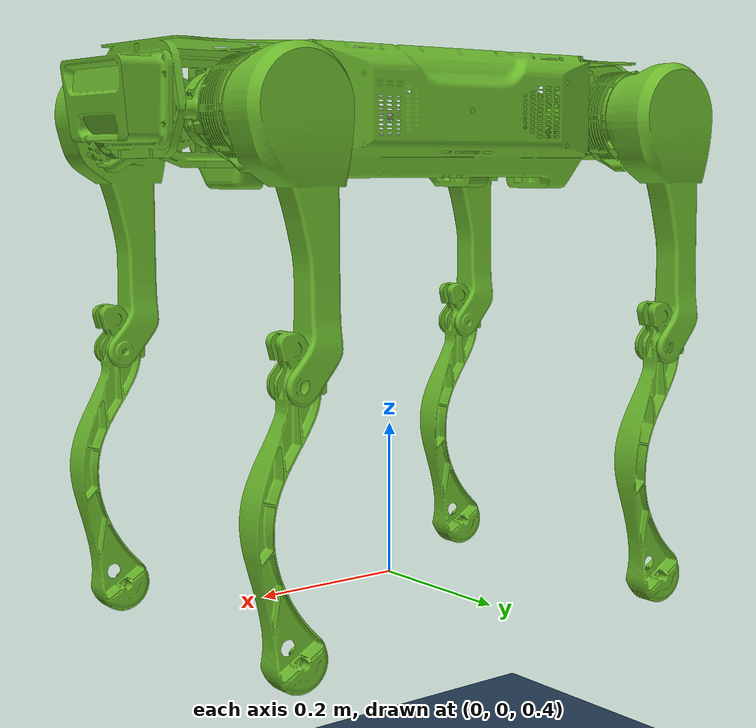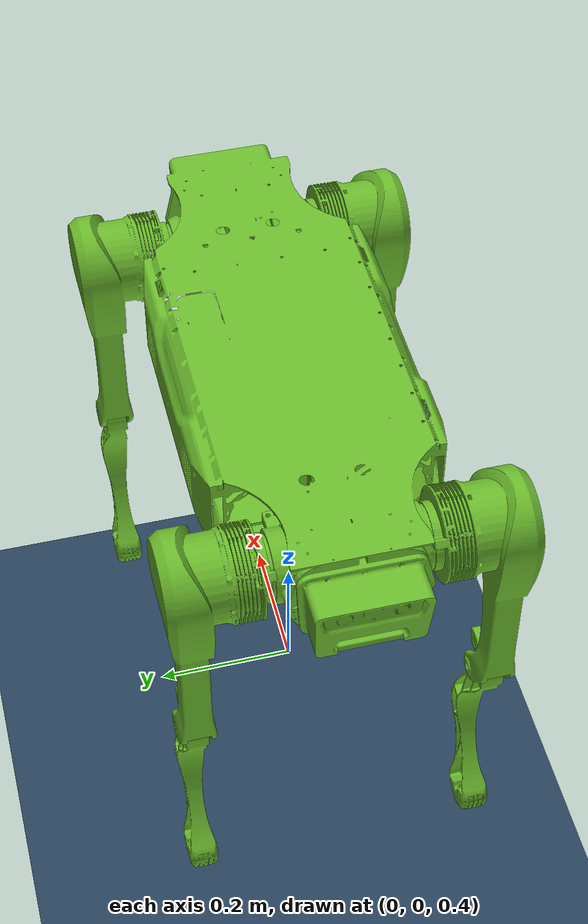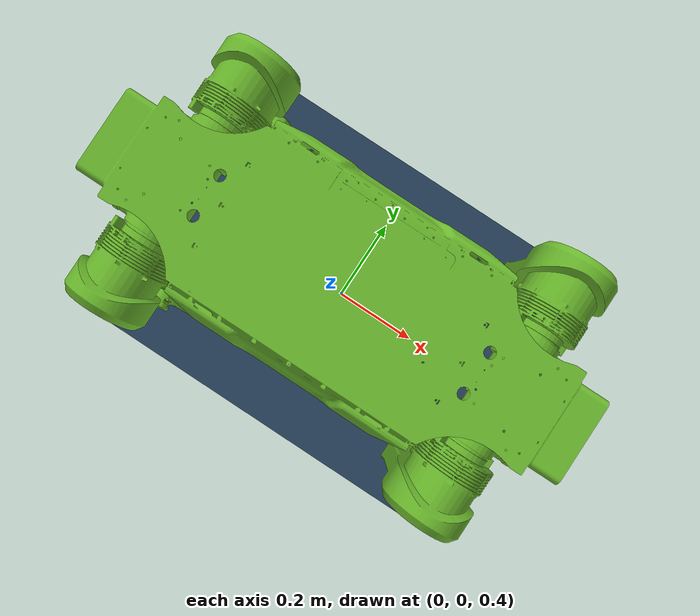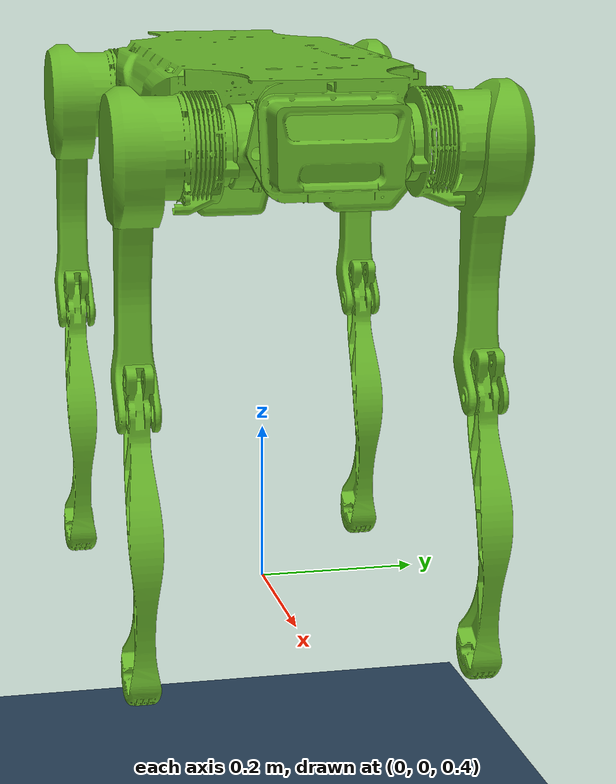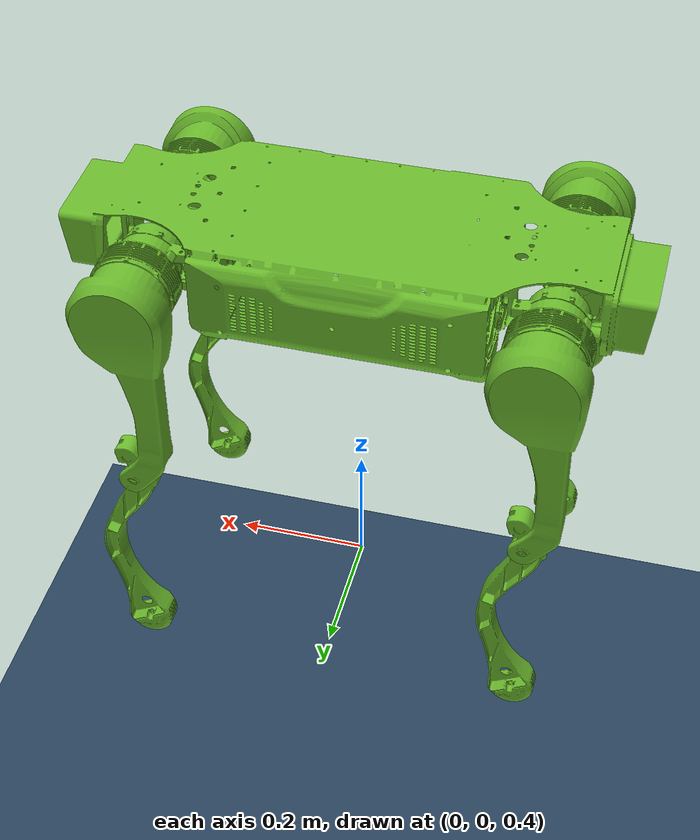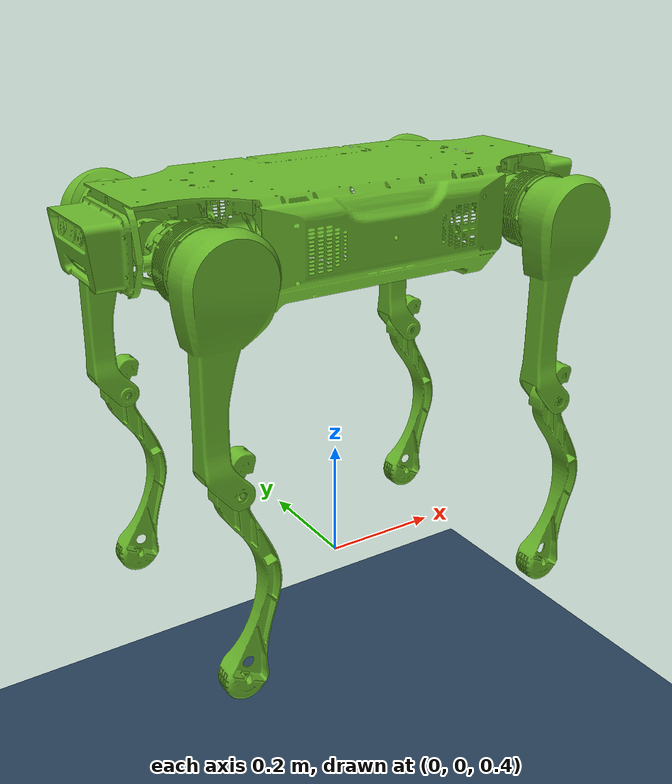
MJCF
<mujoco model="X20V2 scene">
  <include file="X20c.xml"/>

  <statistic center="0 0 0.1" extent="0.8"/>

  <visual>
    <headlight diffuse="0.6 0.6 0.6" ambient="0.3 0.3 0.3" specular="0 0 0"/>
    <rgba haze="0.15 0.25 0.35 1"/>
    <global azimuth="120" elevation="-20"/>
  </visual>

  <asset>
    <texture type="skybox" builtin="gradient" rgb1="0.3 0.5 0.7" rgb2="0 0 0" width="512" height="3072"/>
    <texture type="2d" name="groundplane" builtin="checker" mark="edge" rgb1="0.2 0.3 0.4" rgb2="0.1 0.2 0.3"
      markrgb="0.8 0.8 0.8" width="300" height="300"/>
    <material name="groundplane" texture="groundplane" texuniform="true" texrepeat="5 5" reflectance="0.2"/>
  </asset>

  <worldbody>
    <light pos="0 0 1.5" dir="0 0 -1" directional="true"/>
    <geom name="floor" size="0 0 0.05" type="plane" material="groundplane"/>
  </worldbody>
</mujoco>

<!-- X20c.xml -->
<mujoco model="JueyingX20V2">
  <compiler angle="radian" meshdir="assets" autolimits="true"/>

  <option timestep="0.002" cone="elliptic" impratio="100"/>

  <default>
    <default class="x20">
      <geom friction="0.6" margin="0.001" condim="1"/>
      <joint damping="2" armature="0.01" frictionloss="0.2"/>
      <motor forcerange="-100 100"/>
      <default class="abduction">
        <joint range="-0.496 0.496"/>
      </default>
      <default class="hip">
        <joint range="-2.79 0.257"/>
      </default>
      <default class="knee">
        <joint range="0.35 2.48"/>
        <motor forcerange="-160 160"/>
      </default>
      <default class="visual">
        <geom type="mesh" contype="0" conaffinity="0" group="2" material="dark"/>
      </default>
      <default class="collision">
        <geom contype="1" group="3" type="capsule"/>
        <default class="foot">
          <geom type="sphere" size="0.038" priority="1" solimp="0.015 1 0.031" condim="6"
            friction="0.8 0.02 0.01"/>
        </default>
      </default>
    </default>
  </default>

  <asset>
    <material name="dark" rgba="0.4157 0.7216 0.1725 1.00"/>
    <mesh name= "Torso" file="Torso.stl"/>
    <mesh name= "Shank" file="Shank.stl"/>
    <mesh name= "FL_Hip" file="FL_Hip.stl"/>
    <mesh name= "FR_Hip" file="FR_Hip.stl"/>
    <mesh name= "HL_Hip" file="HL_Hip.stl"/>
    <mesh name= "HR_Hip" file="HR_Hip.stl"/>
    <mesh name= "L_Thigh" file="L_Thigh.stl"/>
    <mesh name= "R_Thigh" file="R_Thigh.stl"/>
  </asset>

  <worldbody>
    <light name="spotlight" mode="targetbodycom" target="trunk" pos="0 -1 2"/>
    <body name="trunk" pos="0 0 1.0" childclass="x20">
      <camera name="tracking" mode="trackcom" pos="0 -1 0.8" xyaxes="1 0 0 0 1 1"/>
      <inertial pos="0.0049299 0.00041299 0.0040884" mass="26.398" fullinertia= "0.1632 0.40648  0.52596 -5.2136E-05 -0.00019406 8.2679E-05"/>
      <geom class="visual" mesh="Torso"/>
      <geom class="collision" size="0.23 0.13 0.075" type="box"/>
      <geom class="collision" pos="0.3 0 0" size="0.1 0.08 0.05" type="box"/>
      <geom class="collision" pos="-0.3 0 0" size="0.1 0.08 0.05" type="box"/>
      <freejoint/>
      <site name="imu" pos="0 0 0"/>
      <body name="FL_HIP" pos="0.292 0.08 0">
        <inertial pos="-0.00075689 -0.0089129 -5.0528e-05" quat="0.495032 0.511341 0.499437 0.494001" mass="1.5767" diaginertia="0.00169132 0.00134312 0.00121396"/>
        <geom class="visual" mesh="FL_Hip"/>
        <joint class="abduction" name="FL_HipX_joint" axis="-1 0 0"/>
        <body name="FL_THIGH" pos="0 0.12325 0">
          <inertial pos="-0.0025263 -0.022118 -0.0292" quat="0.713762 -0.00543186 0.00617568 0.70034" mass="3.0063" diaginertia="0.00807054 0.00580939 0.00387287"/>
          <geom class="visual" mesh="L_Thigh"/>
          <geom class="collision" size="0.04 0.125" pos="-0.02 0 -0.13" type="cylinder"/>
          <joint class="hip" name="FL_HipY_joint" axis="0 -1 0"/>
          <body name="FL_SHANK" pos="0 0 -0.3">
            <inertial pos="0.00640548 0.000182102 -0.178647" quat="0.708959 -0.00659071 -0.00825847 0.705171" mass="0.66332" diaginertia="0.0069659 0.00674831 0.00031262"/>
            <geom class="visual" mesh="Shank"/>
            <geom class="collision" size="0.025 0.11" pos="0 0 -0.155" type="cylinder"/>
            <geom name="FL" class="foot" pos="0 0.002 -0.31"/>
            <joint class="knee" name="FL_Knee_joint" axis="0 -1 0"/>
          </body>
        </body>
      </body>
      <body name="FR_HIP" pos="0.292 -0.08 0">
        <inertial pos="-0.00075689 0.0089129 5.0528e-05" quat="0.499437 0.494001 0.495032 0.511341" mass="1.5767" diaginertia="0.00169132 0.00134312 0.00121396"/>
        <geom class="visual" mesh="FR_Hip"/>
        <joint class="abduction" name="FR_HipX_joint" axis="-1 0 0"/>
        <body name="FR_THIGH" pos="0 -0.12325 0">
          <inertial pos="-0.0025266 0.022119 -0.029194" quat="0.70035 0.00617446 -0.00542039 0.713752" mass="3.0062" diaginertia="0.00807034 0.00580919 0.00387277"/>
          <geom class="visual" mesh="R_Thigh"/>
          <joint class="hip" name="FR_HipY_joint" axis="0 -1 0"/>
          <geom class="collision" size="0.04 0.125" pos="-0.02 0 -0.13" type="cylinder"/>
          <body name="FR_SHANK" pos="0 0 -0.3">
            <inertial pos="0.00640548 -0.000179714 -0.178647" quat="0.705323 -0.00842938 -0.0064193 0.708807" mass="0.66332" diaginertia="0.00696592 0.00674831 0.000312604"/>
            <geom class="visual" mesh="Shank"/>
            <joint class="knee" name="FR_Knee_joint" axis="0 -1 0"/>
            <geom class="collision" size="0.025 0.11" pos="0 0 -0.155" type="cylinder"/>
            <geom name="FR" class="foot" pos="0 -0.002 -0.31"/>
          </body>
        </body>
      </body>
      <body name="HL_HIP" pos="-0.292 0.08 0">
        <inertial pos="0.00075689 -0.0089129 5.0528e-05" quat="0.494001 0.499437 0.511341 0.495032" mass="1.5767" diaginertia="0.00169132 0.00134312 0.00121396"/>
        <geom class="visual" mesh="HL_Hip"/>
        <joint class="abduction" name="HL_HipX_joint" axis="-1 0 0"/>
        <body name="HL_THIGH" pos="0 0.12325 0">
          <inertial pos="-0.0025264 -0.022118 -0.0292" quat="0.713762 -0.00543177 0.00617594 0.70034" mass="3.0063" diaginertia="0.00807055 0.00580939 0.00387287"/>
          <geom class="visual" mesh="L_Thigh"/>
          <joint class="hip" name="HL_HipY_joint" axis="0 -1 0"/>
          <geom class="collision" size="0.04 0.125" pos="-0.02 0 -0.13" type="cylinder"/>
          <body name="HL_SHANK" pos="0 0 -0.3">
            <inertial pos="0.00640548 0.000180908 -0.178647" quat="0.70896 -0.00659011 -0.00825908 0.70517" mass="0.66332" diaginertia="0.0069659 0.00674831 0.00031262"/>
            <geom class="visual" mesh="Shank"/>
            <joint class="knee" name="HL_Knee_joint" axis="0 -1 0"/>
            <geom class="collision" size="0.025 0.11" pos="0 0 -0.155" type="cylinder"/>
            <geom name="HL" class="foot" pos="0 0.002 -0.31"/>
          </body>
        </body>
      </body>
      <body name="HR_HIP" pos="-0.292 -0.08 0">
        <inertial pos="0.00075689 0.0089129 -5.0528e-05" quat="0.511341 0.495032 0.494001 0.499437" mass="1.5767" diaginertia="0.00169132 0.00134312 0.00121396"/>
        <geom class="visual" mesh="HR_Hip"/>
        <joint class="abduction" name="HR_HipX_joint" axis="-1 0 0"/>
        <body name="HR_THIGH" pos="0 -0.12325 0">
          <inertial pos="-0.0025266 0.022119 -0.029194" quat="0.70035 0.00617457 -0.00542028 0.713752" mass="3.0062" diaginertia="0.00807034 0.00580919 0.00387277"/>
          <geom class="visual" mesh="R_Thigh"/>
          <joint class="hip" name="HR_HipY_joint" axis="0 -1 0"/>
          <geom class="collision" size="0.04 0.125" pos="-0.02 0 -0.13" type="cylinder"/>
          <body name="HR_SHANK" pos="0 0 -0.3">
            <inertial pos="0.00640548 -0.000180908 -0.178647" quat="0.705324 -0.00842878 -0.00641991 0.708806" mass="0.66332" diaginertia="0.00696592 0.00674831 0.000312604"/>
            <geom class="visual" mesh="Shank"/>
            <joint class="knee" name="HR_Knee_joint" axis="0 -1 0"/>
            <geom class="collision" size="0.025 0.11" pos="0 0 -0.155" type="cylinder"/>
            <geom name="HR" class="foot" pos="0 -0.002 -0.31"/>
          </body>
        </body>
      </body>
    </body>
  </worldbody>

  <actuator>
    <motor class="abduction" name="FR_HipX" joint="FR_HipX_joint"/>
    <motor class="hip" name="FR_HipY" joint="FR_HipY_joint"/>
    <motor class="knee" name="FR_Knee" joint="FR_Knee_joint"/>
    <motor class="abduction" name="FL_HipX" joint="FL_HipX_joint"/>
    <motor class="hip" name="FL_HipY" joint="FL_HipY_joint"/>
    <motor class="knee" name="FL_Knee" joint="FL_Knee_joint"/>
    <motor class="abduction" name="HR_HipX" joint="HR_HipX_joint"/>
    <motor class="hip" name="HR_HipY" joint="HR_HipY_joint"/>
    <motor class="knee" name="HR_Knee" joint="HR_Knee_joint"/>
    <motor class="abduction" name="HL_HipX" joint="HL_HipX_joint"/>
    <motor class="hip" name="HL_HipY" joint="HL_HipY_joint"/>
    <motor class="knee" name="HL_Knee" joint="HL_Knee_joint"/>
  </actuator>

  <sensor>
    <gyro name="body_gyro" site="imu"/>
    <accelerometer name="body_linacc" site="imu"/>
    <framequat name="body_quat" objtype="site" objname="imu"/>
  </sensor>

  <keyframe>
    <key name="home" qpos="0 0 0.521 1 0 0 0 0 0 0 0 0 0 0 0 0 0 0 0"/>
  </keyframe>
</mujoco>
